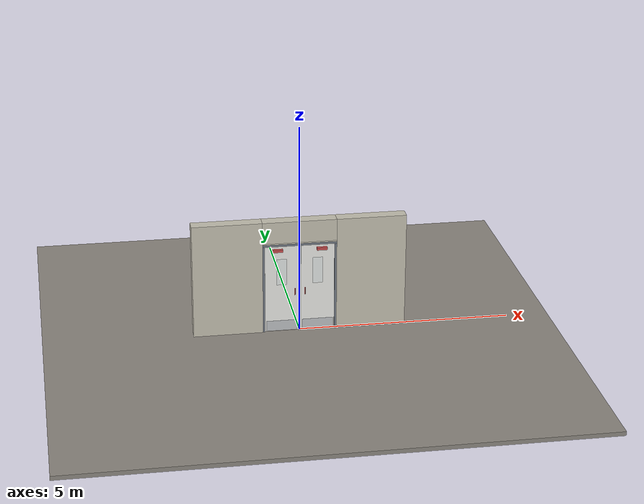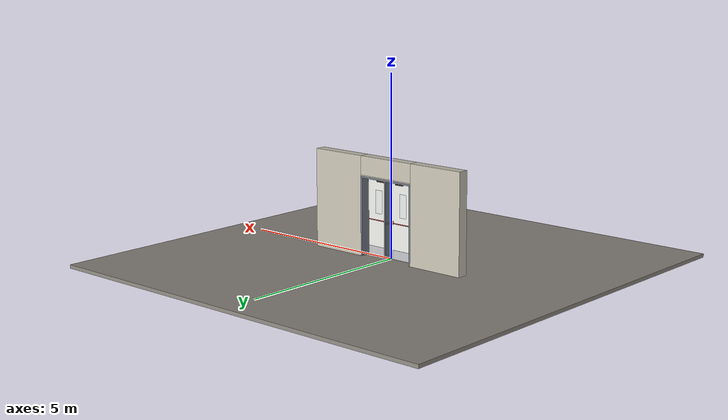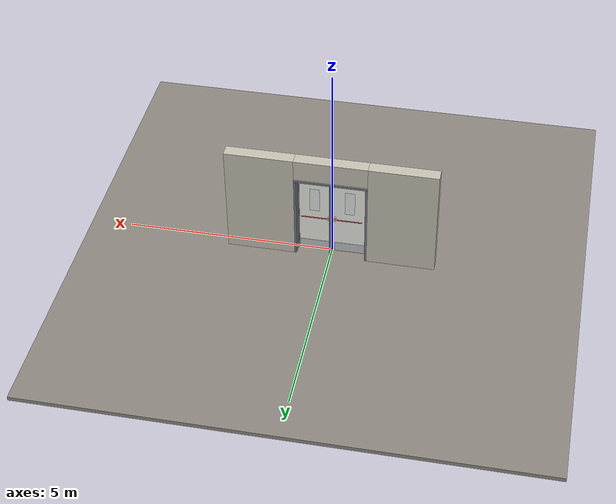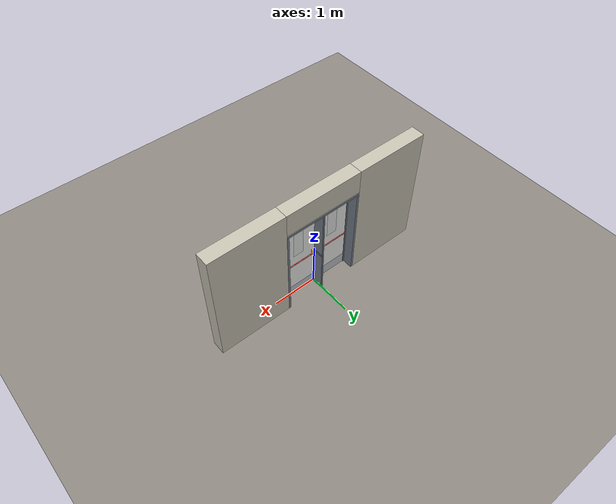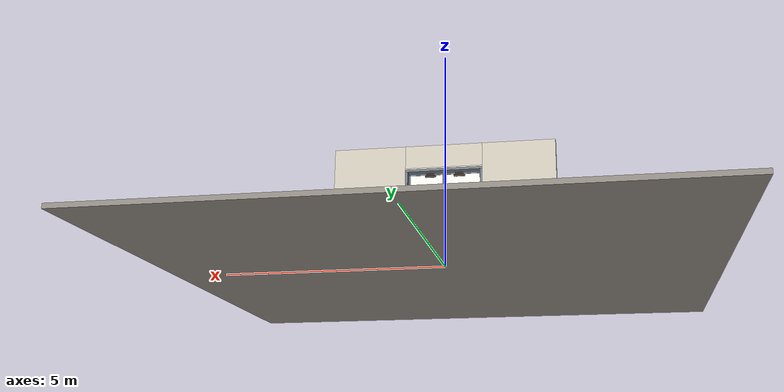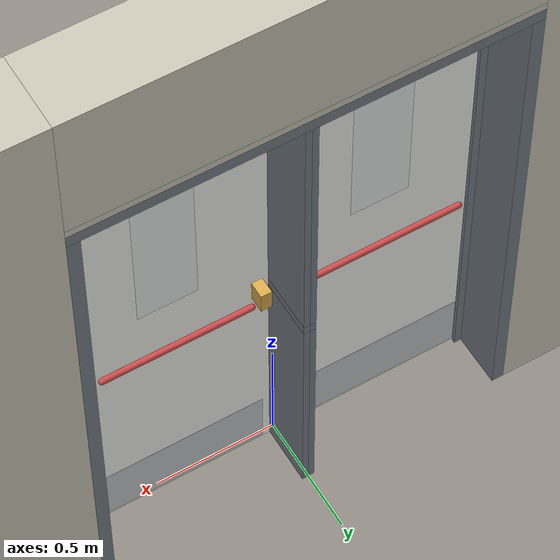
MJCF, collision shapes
<?xml version="1.0" ?>
<mujoco model="db0841_swing_double_full">
  <compiler angle="radian" meshdir="../../hardware" texturedir="../../textures" autolimits="true" inertiafromgeom="false"/>
  <option timestep="0.002" integrator="implicitfast" cone="elliptic" impratio="10" noslip_iterations="3">
    <flag multiccd="enable"/>
  </option>
  <size memory="16M"/>
  <default>
    <geom condim="4" solref="0.005 1" solimp="0.95 0.99 0.001"/>
    <joint solreflimit="0.005 1" solimplimit="0.95 0.99 0.001"/>
    <tendon solreflimit="0.005 1"/>
    <equality solref="0.002 1"/>
  </default>
  <visual>
    <headlight ambient="0.4 0.4 0.4" diffuse="0.7 0.7 0.7" specular="0.2 0.2 0.2"/>
    <quality shadowsize="4096"/>
    <map znear="0.01" zfar="60"/>
  </visual>
  <asset>
    <mesh name="closer_body_b226fdb10b" file="closer_body_b226fdb10b.obj"/>
    <mesh name="crossbar_268e86df6c" file="crossbar_268e86df6c.obj"/>
    <mesh name="exit_sign_a6449bfa2c" file="exit_sign_a6449bfa2c.obj"/>
    <mesh name="hinge_e22b26c0c1" file="hinge_e22b26c0c1.obj"/>
    <mesh name="hinge_jamb_e1d088f8dc" file="hinge_jamb_e1d088f8dc.obj"/>
    <mesh name="pull_1e5d69a91a" file="pull_1e5d69a91a.obj"/>
    <material name="mat_floor" rgba="0.55 0.53 0.5 1" specular="0.2" shininess="0.15" reflectance="0"/>
    <material name="mat_wall" rgba="0.78 0.76 0.7 1" specular="0.2" shininess="0.1" reflectance="0"/>
    <material name="mat_leaf_a" rgba="0.93 0.93 0.91 1" specular="0.2" shininess="0.48" reflectance="0"/>
    <material name="mat_glass" rgba="0.85 0.92 0.95 0.25" specular="0.2" shininess="0.95" reflectance="0.1"/>
    <material name="mat_hinge" rgba="0.65 0.66 0.68 1" specular="0.74" shininess="0.5" reflectance="0.36"/>
    <material name="mat_op_brass" rgba="0.85 0.66 0.3 1" specular="0.8" shininess="0.75" reflectance="0.4"/>
    <material name="mat_op_stainless" rgba="0.75 0.76 0.77 1" specular="0.8" shininess="0.65" reflectance="0.4"/>
    <material name="mat_bolt" rgba="0.75 0.76 0.77 1" specular="0.8" shininess="0.65" reflectance="0.4"/>
    <material name="mat_maglock" rgba="0.22 0.17 0.13 1" specular="0.8" shininess="0.6" reflectance="0.4"/>
    <material name="mat_closer" rgba="0.22 0.17 0.13 1" specular="0.8" shininess="0.6" reflectance="0.4"/>
    <material name="mat_kick" rgba="0.75 0.76 0.77 1" specular="0.8" shininess="0.65" reflectance="0.4"/>
    <material name="mat_exit_sign" rgba="0.85 0.1 0.1 1" specular="0.2" shininess="0.6" reflectance="0"/>
    <material name="mat_sign_bracket" rgba="0.8 0.81 0.83 1" specular="0.8" shininess="0.6" reflectance="0.4"/>
    <material name="mat_leaf_b" rgba="0.93 0.93 0.91 1" specular="0.2" shininess="0.48" reflectance="0"/>
    <material name="mat_frame" rgba="0.45 0.48 0.52 1" specular="0.32" shininess="0.6" reflectance="0.08"/>
    <texture name="skybox" type="skybox" builtin="gradient" rgb1="0.6 0.7 0.85" rgb2="0.9 0.92 0.95" width="256" height="256"/>
  </asset>
  <worldbody>
    <light name="sun" pos="1.5 -2.5 4" dir="-0.3 0.5 -0.8" directional="true" diffuse="0.8 0.8 0.8" specular="0.3 0.3 0.3" castshadow="true"/>
    <light name="fill" pos="-1.5 2.5 3" dir="0.3 -0.5 -0.7" directional="true" diffuse="0.35 0.35 0.4" castshadow="false"/>
    <camera name="robot_view" pos="0 -2.529812 1.812087" xyaxes="1 0 0 0 0.26963 0.962964" fovy="52"/>
    <camera name="far_view" pos="0 2.745812 1.812087" xyaxes="-1 0 0 0 -0.26963 0.962964" fovy="52"/>
    <camera name="iso" pos="-2.004737 -2.107762 2.234138" xyaxes="0.741536 -0.670913 0 0.242917 0.268487 0.932151" fovy="46"/>
    <camera name="detail_handle" pos="0.062 -0.882 1.296" xyaxes="0.97561 0.219512 0 -0.070934 0.315262 0.94635" fovy="38"/>
    <geom name="floor" type="box" size="6 6 0.05" pos="0 0 -0.05" material="mat_floor" group="0" contype="1" conaffinity="1" friction="0.8 0.005 0.0001" density="2400"/>
    <geom name="wall_left" type="box" size="0.81625 0.15 1.3735" pos="-1.68375 0.108 1.3735" material="mat_wall" group="0" contype="1" conaffinity="1" friction="0.6 0.005 0.0001" density="800"/>
    <geom name="wall_right" type="box" size="0.81625 0.15 1.3735" pos="1.68375 0.108 1.3735" material="mat_wall" group="0" contype="1" conaffinity="1" friction="0.6 0.005 0.0001" density="800"/>
    <geom name="wall_header" type="box" size="0.8675 0.15 0.26" pos="0 0.108 2.487" material="mat_wall" group="0" contype="1" conaffinity="1" friction="0.6 0.005 0.0001" density="800"/>
    <geom name="hinge_0_jamb" type="mesh" mesh="hinge_jamb_e1d088f8dc" pos="-0.8145 -0.029 0.259" material="mat_hinge" group="1" contype="0" conaffinity="0" density="7850"/>
    <geom name="hinge_1_jamb" type="mesh" mesh="hinge_jamb_e1d088f8dc" pos="-0.8145 -0.029 1.076" material="mat_hinge" group="1" contype="0" conaffinity="0" density="7850"/>
    <geom name="hinge_2_jamb" type="mesh" mesh="hinge_jamb_e1d088f8dc" pos="-0.8145 -0.029 1.963" material="mat_hinge" group="1" contype="0" conaffinity="0" density="7850"/>
    <geom name="leaf_a_maglock_body" type="box" size="0.125 0.025 0.02" pos="-0.328 0.057 2.082" material="mat_maglock" group="0" contype="1" conaffinity="1" friction="0.6 0.005 0.0001" density="2000"/>
    <geom name="leaf_a_maglock_bracket" type="box" size="0.09 0.025 0.0225" pos="-0.328 0.057 2.1245" material="mat_maglock" group="1" contype="0" conaffinity="0" density="7850"/>
    <geom name="exit_sign" type="mesh" mesh="exit_sign_a6449bfa2c" pos="0 0.15 2.447" material="mat_exit_sign" group="2" contype="0" conaffinity="0" density="500"/>
    <geom name="hinge_0_jamb_2" type="mesh" mesh="hinge_jamb_e1d088f8dc" pos="0.8145 -0.029 0.259" quat="0 0 1 0" material="mat_hinge" group="1" contype="0" conaffinity="0" density="7850"/>
    <geom name="hinge_1_jamb_2" type="mesh" mesh="hinge_jamb_e1d088f8dc" pos="0.8145 -0.029 1.076" quat="0 0 1 0" material="mat_hinge" group="1" contype="0" conaffinity="0" density="7850"/>
    <geom name="hinge_2_jamb_2" type="mesh" mesh="hinge_jamb_e1d088f8dc" pos="0.8145 -0.029 1.963" quat="0 0 1 0" material="mat_hinge" group="1" contype="0" conaffinity="0" density="7850"/>
    <geom name="leaf_b_maglock_body" type="box" size="0.125 0.025 0.02" pos="0.328 0.057 2.082" material="mat_maglock" group="0" contype="1" conaffinity="1" friction="0.6 0.005 0.0001" density="2000"/>
    <geom name="leaf_b_maglock_bracket" type="box" size="0.09 0.025 0.0225" pos="0.328 0.057 2.1245" material="mat_maglock" group="1" contype="0" conaffinity="0" density="7850"/>
    <geom name="jamb_l" type="box" size="0.025 0.15 1.0735" pos="-0.8425 0.108 1.0735" material="mat_frame" group="0" contype="1" conaffinity="1" friction="0.6 0.005 0.0001" density="300"/>
    <geom name="jamb_r" type="box" size="0.025 0.15 1.0735" pos="0.8425 0.108 1.0735" material="mat_frame" group="0" contype="1" conaffinity="1" friction="0.6 0.005 0.0001" density="300"/>
    <geom name="jamb_head" type="box" size="0.8675 0.15 0.025" pos="0 0.108 2.172" material="mat_frame" group="0" contype="1" conaffinity="1" friction="0.6 0.005 0.0001" density="300"/>
    <geom name="head_stud" type="box" size="0.8675 0.15 0.015" pos="0 0.108 2.212" material="mat_wall" group="0" contype="1" conaffinity="1" friction="0.6 0.005 0.0001" density="500"/>
    <geom name="stop_l" type="box" size="0.015 0.008 1.0735" pos="-0.8025 0.0305 1.0735" material="mat_frame" group="0" contype="1" conaffinity="1" friction="0.6 0.005 0.0001" density="300"/>
    <geom name="stop_r" type="box" size="0.015 0.008 1.0735" pos="0.8025 0.0305 1.0735" material="mat_frame" group="0" contype="1" conaffinity="1" friction="0.6 0.005 0.0001" density="300"/>
    <geom name="stop_head" type="box" size="0.8175 0.008 0.015" pos="0 0.0305 2.132" material="mat_frame" group="0" contype="1" conaffinity="1" friction="0.6 0.005 0.0001" density="300"/>
    <geom name="mullion_a_1016_wall_n" type="box" size="0.0125 0.1235 0.02" pos="-0.0125 0.1345 1.016" material="mat_frame" group="0" contype="1" conaffinity="1" friction="0.6 0.005 0.0001" density="300"/>
    <geom name="mullion_a_1016_wall_p" type="box" size="0.0125 0.008 0.02" pos="-0.0125 -0.019 1.016" material="mat_frame" group="0" contype="1" conaffinity="1" friction="0.6 0.005 0.0001" density="300"/>
    <geom name="mullion_a_1016_ramp" type="box" size="0.0125 0.020156 0.02" pos="-0.004147 -0.038298 1.016" quat="0.9665 0 0 0.256668" material="mat_frame" group="0" contype="1" conaffinity="1" friction="0.12 0.005 0.0001" density="300"/>
    <geom name="mullion_a_1016_back" type="box" size="0.002 0.011 0.02" pos="0 0 1.016" material="mat_frame" group="0" contype="1" conaffinity="1" friction="0.6 0.005 0.0001" density="300"/>
    <geom name="mullion_a_seg_0" type="box" size="0.0125 0.15 0.498" pos="-0.0125 0.108 0.498" material="mat_frame" group="0" contype="1" conaffinity="1" friction="0.6 0.005 0.0001" density="300"/>
    <geom name="mullion_a_seg_1" type="box" size="0.0125 0.15 0.5555" pos="-0.0125 0.108 1.5915" material="mat_frame" group="0" contype="1" conaffinity="1" friction="0.6 0.005 0.0001" density="300"/>
    <geom name="mullion_b_1016_wall_n" type="box" size="0.0125 0.1235 0.02" pos="0.0125 0.1345 1.016" material="mat_frame" group="0" contype="1" conaffinity="1" friction="0.6 0.005 0.0001" density="300"/>
    <geom name="mullion_b_1016_wall_p" type="box" size="0.0125 0.008 0.02" pos="0.0125 -0.019 1.016" material="mat_frame" group="0" contype="1" conaffinity="1" friction="0.6 0.005 0.0001" density="300"/>
    <geom name="mullion_b_1016_ramp" type="box" size="0.0125 0.020156 0.02" pos="0.004147 -0.038298 1.016" quat="0.9665 0 0 -0.256668" material="mat_frame" group="0" contype="1" conaffinity="1" friction="0.12 0.005 0.0001" density="300"/>
    <geom name="mullion_b_seg_0" type="box" size="0.0125 0.15 0.498" pos="0.0125 0.108 0.498" material="mat_frame" group="0" contype="1" conaffinity="1" friction="0.6 0.005 0.0001" density="300"/>
    <geom name="mullion_b_seg_1" type="box" size="0.0125 0.15 0.5555" pos="0.0125 0.108 1.5915" material="mat_frame" group="0" contype="1" conaffinity="1" friction="0.6 0.005 0.0001" density="300"/>
    <site name="approach_point" pos="0 -1.5 0" quat="1 0 0 0" size="0.05" rgba="0.2 0.9 0.2 0.5" group="4"/>
    <site name="goal_point" pos="0 1.5 0" quat="1 0 0 0" size="0.05" rgba="0.2 0.9 0.2 0.5" group="4"/>
    <site name="door_plane_center" pos="0 0 1.0735" quat="1 0 0 0" size="0.02" rgba="0.2 0.9 0.2 0.5" group="4"/>
    <site name="approach_point_2" pos="0 -1.5 0" quat="1 0 0 0" size="0.05" rgba="0.2 0.9 0.2 0.5" group="4"/>
    <site name="goal_point_2" pos="0 1.5 0" quat="1 0 0 0" size="0.05" rgba="0.2 0.9 0.2 0.5" group="4"/>
    <site name="door_plane_center_2" pos="0 0 1.0735" quat="1 0 0 0" size="0.02" rgba="0.2 0.9 0.2 0.5" group="4"/>
    <site name="approach_point_3" pos="0 -1.5 0" quat="1 0 0 0" size="0.05" rgba="0.2 0.9 0.2 0.5" group="4"/>
    <site name="goal_point_3" pos="0 1.5 0" quat="1 0 0 0" size="0.05" rgba="0.2 0.9 0.2 0.5" group="4"/>
    <site name="door_plane_center_3" pos="0 0 1.0735" quat="1 0 0 0" size="0.02" rgba="0.2 0.9 0.2 0.5" group="4"/>
    <body name="leaf_a" pos="-0.8175 0 0">
      <inertial pos="0.386491 -0.007954 1.142788" mass="53.126167" quat="0.500927 -0.485929 -0.506605 -0.506258" diaginertia="2.569796881 25.976058418 28.476344507"/>
      <joint name="leaf_a_hinge" type="hinge" axis="0 0 -1" pos="0.003 -0.029 0" limited="true" range="0 1.570796" solreflimit="0.02 1" damping="10.168374" frictionloss="1.567171" stiffness="12.859719" springref="-2.527271" armature="0.02"/>
      <geom name="leaf_a_slab" type="box" size="0.39325 0.022 1.067" pos="0.39625 0 1.076" material="mat_leaf_a" group="0" contype="1" conaffinity="1" friction="0.4 0.005 0.0001" density="1"/>
      <geom name="leaf_a_glass_0" type="box" size="0.117975 0.0228 0.3201" pos="0.39625 0 1.5028" material="mat_glass" group="1" contype="0" conaffinity="0" density="1"/>
      <geom name="hinge_0" type="mesh" mesh="hinge_e22b26c0c1" pos="0.003 -0.029 0.259" material="mat_hinge" group="1" contype="0" conaffinity="0" density="7850"/>
      <geom name="hinge_1" type="mesh" mesh="hinge_e22b26c0c1" pos="0.003 -0.029 1.076" material="mat_hinge" group="1" contype="0" conaffinity="0" density="7850"/>
      <geom name="hinge_2" type="mesh" mesh="hinge_e22b26c0c1" pos="0.003 -0.029 1.963" material="mat_hinge" group="1" contype="0" conaffinity="0" density="7850"/>
      <geom name="leaf_a_exit_device_case" type="box" size="0.022 0.033 0.045" pos="0.7445 0.055 1.016" material="mat_op_brass" group="0" contype="1" conaffinity="1" friction="0.6 0.005 0.0001" density="3000"/>
      <geom name="leaf_a_far_pull_n" type="mesh" mesh="pull_1e5d69a91a" pos="0.6995 -0.022 1.016" quat="0.707107 0.707107 0 0" material="mat_op_stainless" group="1" contype="0" conaffinity="0" density="3000"/>
      <geom name="leaf_a_far_pull_col_n" type="capsule" size="0.0095 0.08" pos="0.6995 -0.082 1.016" material="mat_op_stainless" group="3" contype="1" conaffinity="1" rgba="0.8 0.3 0.3 0.25" friction="0.7 0.01 0.0001" density="3000"/>
      <geom name="leaf_a_maglock_armature" type="box" size="0.09 0.005 0.02" pos="0.4895 0.027 2.082" material="mat_maglock" group="1" contype="0" conaffinity="0" density="7800"/>
      <geom name="closer_body" type="mesh" mesh="closer_body_b226fdb10b" pos="0.3 -0.022 2.054" quat="0.707107 0.707107 0 0" material="mat_closer" group="1" contype="0" conaffinity="0" density="2000"/>
      <geom name="closer_body_col" type="box" size="0.12 0.04 0.03" pos="0.3 -0.062 2.054" material="mat_closer" group="3" contype="1" conaffinity="1" rgba="0.8 0.3 0.3 0.25" friction="0.6 0.005 0.0001" density="2000"/>
      <geom name="kick_plate_n" type="box" size="0.36325 0.0008 0.125" pos="0.39625 -0.0228 0.144" material="mat_kick" group="2" contype="0" conaffinity="0" density="7900"/>
      <geom name="kick_plate_p" type="box" size="0.36325 0.0008 0.125" pos="0.39625 0.0228 0.144" material="mat_kick" group="2" contype="0" conaffinity="0" density="7900"/>
      <site name="leaf_a_far_pull_grip_n" pos="0.6995 -0.082 1.016" quat="1 0 0 0" size="0.012" rgba="0.2 0.9 0.2 0.5" group="4"/>
      <site name="leaf_a_edge_mid" pos="0.7895 0 1.067" quat="1 0 0 0" size="0.02" rgba="0.2 0.9 0.2 0.5" group="4"/>
      <body name="leaf_a_exit_device" pos="0.394563 0.022 1.016">
        <inertial pos="0 0.057644 0" mass="1.934494" quat="1 0 0 0" diaginertia="0.000338382 0.068956491 0.069151805"/>
        <joint name="leaf_a_exit_device_hinge" type="hinge" axis="1 0 0" limited="true" range="0 0.35" damping="0.8971" frictionloss="0.14" stiffness="12" springref="-0.333333" armature="0.01"/>
        <geom name="leaf_a_exit_device_mesh" type="mesh" mesh="crossbar_268e86df6c" pos="0 0 0" quat="-0.707107 0.707107 0 0" material="mat_op_brass" group="1" contype="0" conaffinity="0" density="3000"/>
        <geom name="leaf_a_exit_device_col" type="capsule" size="0.0125 0.294937" pos="0 0.06 0" quat="0.707107 0 0.707107 0" material="mat_op_brass" group="3" contype="1" conaffinity="1" rgba="0.8 0.3 0.3 0.25" friction="0.7 0.01 0.0001" density="3000"/>
        <site name="leaf_a_exit_device_push" pos="0 0.06 0" quat="1 0 0 0" size="0.015" rgba="0.2 0.9 0.2 0.5" group="4"/>
      </body>
      <body name="leaf_a_latch_bolt" pos="0.7895 0 1.016">
        <inertial pos="-0.0055 0 0" mass="0.102826" quat="0.92388 -0.382683 0 0" diaginertia="0.000004365 0.000018287 0.000018287"/>
        <joint name="leaf_a_latch_bolt_slide" type="slide" axis="-1 0 0" limited="true" range="0 0.019" damping="2" frictionloss="0.3" stiffness="800" springref="-0.01" armature="0.1"/>
        <geom name="leaf_a_latch_bolt_capsule" type="capsule" size="0.0095 0.015" pos="-0.0055 0 0" quat="0.707107 0 0.707107 0" material="mat_bolt" group="0" contype="1" conaffinity="1" friction="0.2 0.005 0.0001" density="8500"/>
      </body>
    </body>
    <body name="leaf_b" pos="0.8175 0 0">
      <inertial pos="-0.386491 -0.007954 1.142788" mass="53.126167" quat="0.506258 -0.506605 -0.485929 -0.500927" diaginertia="2.569796881 25.976058418 28.476344507"/>
      <joint name="leaf_b_hinge" type="hinge" axis="0 0 1" pos="-0.003 -0.029 0" limited="true" range="0 1.570796" solreflimit="0.02 1" damping="10.168374" frictionloss="1.567171" stiffness="12.859719" springref="-2.527271" armature="0.02"/>
      <geom name="leaf_b_slab" type="box" size="0.39325 0.022 1.067" pos="-0.39625 0 1.076" material="mat_leaf_b" group="0" contype="1" conaffinity="1" friction="0.4 0.005 0.0001" density="1"/>
      <geom name="leaf_b_glass_0" type="box" size="0.117975 0.0228 0.3201" pos="-0.39625 0 1.5028" material="mat_glass" group="1" contype="0" conaffinity="0" density="1"/>
      <geom name="hinge_0_2" type="mesh" mesh="hinge_e22b26c0c1" pos="-0.003 -0.029 0.259" quat="0 0 1 0" material="mat_hinge" group="1" contype="0" conaffinity="0" density="7850"/>
      <geom name="hinge_1_2" type="mesh" mesh="hinge_e22b26c0c1" pos="-0.003 -0.029 1.076" quat="0 0 1 0" material="mat_hinge" group="1" contype="0" conaffinity="0" density="7850"/>
      <geom name="hinge_2_2" type="mesh" mesh="hinge_e22b26c0c1" pos="-0.003 -0.029 1.963" quat="0 0 1 0" material="mat_hinge" group="1" contype="0" conaffinity="0" density="7850"/>
      <geom name="leaf_b_exit_device_case" type="box" size="0.022 0.033 0.045" pos="-0.7445 0.055 1.016" material="mat_op_brass" group="0" contype="1" conaffinity="1" friction="0.6 0.005 0.0001" density="3000"/>
      <geom name="leaf_b_far_pull_n" type="mesh" mesh="pull_1e5d69a91a" pos="-0.6995 -0.022 1.016" quat="0 0 -0.707107 0.707107" material="mat_op_stainless" group="1" contype="0" conaffinity="0" density="3000"/>
      <geom name="leaf_b_far_pull_col_n" type="capsule" size="0.0095 0.08" pos="-0.6995 -0.082 1.016" material="mat_op_stainless" group="3" contype="1" conaffinity="1" rgba="0.8 0.3 0.3 0.25" friction="0.7 0.01 0.0001" density="3000"/>
      <geom name="leaf_b_maglock_armature" type="box" size="0.09 0.005 0.02" pos="-0.4895 0.027 2.082" material="mat_maglock" group="1" contype="0" conaffinity="0" density="7800"/>
      <geom name="closer_body_2" type="mesh" mesh="closer_body_b226fdb10b" pos="-0.3 -0.022 2.054" quat="0 0 -0.707107 0.707107" material="mat_closer" group="1" contype="0" conaffinity="0" density="2000"/>
      <geom name="closer_body_col_2" type="box" size="0.12 0.04 0.03" pos="-0.3 -0.062 2.054" material="mat_closer" group="3" contype="1" conaffinity="1" rgba="0.8 0.3 0.3 0.25" friction="0.6 0.005 0.0001" density="2000"/>
      <geom name="kick_plate_n_2" type="box" size="0.36325 0.0008 0.125" pos="-0.39625 -0.0228 0.144" material="mat_kick" group="2" contype="0" conaffinity="0" density="7900"/>
      <geom name="kick_plate_p_2" type="box" size="0.36325 0.0008 0.125" pos="-0.39625 0.0228 0.144" material="mat_kick" group="2" contype="0" conaffinity="0" density="7900"/>
      <site name="leaf_b_far_pull_grip_n" pos="-0.6995 -0.082 1.016" quat="1 0 0 0" size="0.012" rgba="0.2 0.9 0.2 0.5" group="4"/>
      <site name="leaf_b_edge_mid" pos="-0.7895 0 1.067" quat="1 0 0 0" size="0.02" rgba="0.2 0.9 0.2 0.5" group="4"/>
      <body name="leaf_b_exit_device" pos="-0.394563 0.022 1.016">
        <inertial pos="0 0.057644 0" mass="1.934494" quat="0 1 0 0" diaginertia="0.000338382 0.068956491 0.069151805"/>
        <joint name="leaf_b_exit_device_hinge" type="hinge" axis="-1 0 0" limited="true" range="0 0.35" damping="0.8971" frictionloss="0.14" stiffness="12" springref="-0.333333" armature="0.01"/>
        <geom name="leaf_b_exit_device_mesh" type="mesh" mesh="crossbar_268e86df6c" pos="0 0 0" quat="0 0 0.707107 0.707107" material="mat_op_brass" group="1" contype="0" conaffinity="0" density="3000"/>
        <geom name="leaf_b_exit_device_col" type="capsule" size="0.0125 0.294937" pos="0 0.06 0" quat="0.707107 0 0.707107 0" material="mat_op_brass" group="3" contype="1" conaffinity="1" rgba="0.8 0.3 0.3 0.25" friction="0.7 0.01 0.0001" density="3000"/>
        <site name="leaf_b_exit_device_push" pos="0 0.06 0" quat="1 0 0 0" size="0.015" rgba="0.2 0.9 0.2 0.5" group="4"/>
      </body>
      <body name="leaf_b_latch_bolt" pos="-0.7895 0 1.016">
        <inertial pos="0.0055 0 0" mass="0.102826" quat="0.92388 0.382683 0 0" diaginertia="0.000004365 0.000018287 0.000018287"/>
        <joint name="leaf_b_latch_bolt_slide" type="slide" axis="1 0 0" limited="true" range="0 0.019" damping="2" frictionloss="0.3" stiffness="800" springref="-0.01" armature="0.1"/>
        <geom name="leaf_b_latch_bolt_capsule" type="capsule" size="0.0095 0.015" pos="0.0055 0 0" quat="0.707107 0 -0.707107 0" material="mat_bolt" group="0" contype="1" conaffinity="1" friction="0.2 0.005 0.0001" density="8500"/>
      </body>
    </body>
  </worldbody>
  <tendon>
    <fixed name="leaf_a_latch_bolt_coupling" limited="true" range="0 10">
      <joint joint="leaf_a_latch_bolt_slide" coef="1"/>
      <joint joint="leaf_a_exit_device_hinge" coef="-0.059375"/>
    </fixed>
    <fixed name="leaf_b_latch_bolt_coupling" limited="true" range="0 10">
      <joint joint="leaf_b_latch_bolt_slide" coef="1"/>
      <joint joint="leaf_b_exit_device_hinge" coef="-0.059375"/>
    </fixed>
  </tendon>
  <equality>
    <weld name="leaf_a_maglock" body1="leaf_a" body2="world" active="true"/>
    <weld name="leaf_b_maglock" body1="leaf_b" body2="world" active="true"/>
  </equality>
  <sensor>
    <jointpos name="leaf_a_hinge_pos" joint="leaf_a_hinge"/>
    <jointvel name="leaf_a_hinge_vel" joint="leaf_a_hinge"/>
    <jointpos name="leaf_a_exit_device_hinge_pos" joint="leaf_a_exit_device_hinge"/>
    <jointvel name="leaf_a_exit_device_hinge_vel" joint="leaf_a_exit_device_hinge"/>
    <jointpos name="leaf_a_latch_bolt_slide_pos" joint="leaf_a_latch_bolt_slide"/>
    <jointvel name="leaf_a_latch_bolt_slide_vel" joint="leaf_a_latch_bolt_slide"/>
    <jointpos name="leaf_b_hinge_pos" joint="leaf_b_hinge"/>
    <jointvel name="leaf_b_hinge_vel" joint="leaf_b_hinge"/>
    <jointpos name="leaf_b_exit_device_hinge_pos" joint="leaf_b_exit_device_hinge"/>
    <jointvel name="leaf_b_exit_device_hinge_vel" joint="leaf_b_exit_device_hinge"/>
    <jointpos name="leaf_b_latch_bolt_slide_pos" joint="leaf_b_latch_bolt_slide"/>
    <jointvel name="leaf_b_latch_bolt_slide_vel" joint="leaf_b_latch_bolt_slide"/>
  </sensor>
</mujoco>
